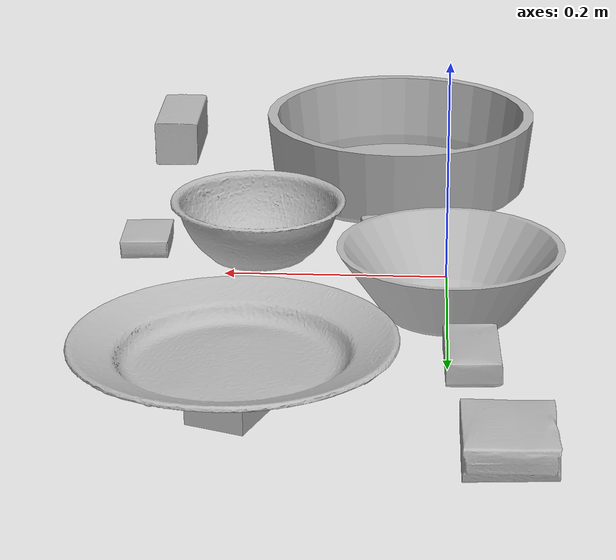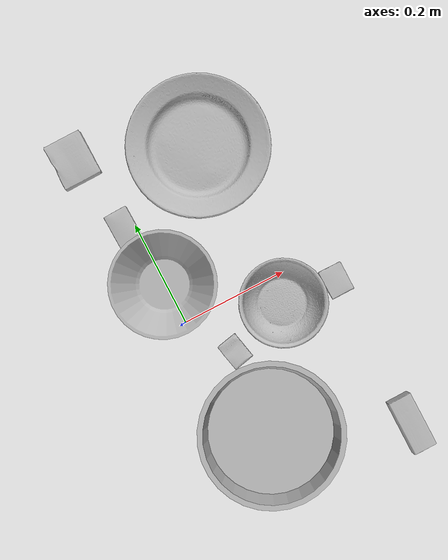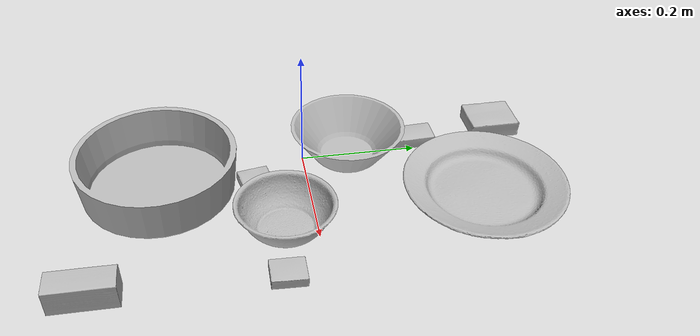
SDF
<sdf version="1.4">
  <world name="default">
    <light name="light1" type="point">
      <pose>0 0 1 0 0 0</pose>
      <diffuse>3 3 3 1</diffuse>
      <specular>3 3 3 1</specular>
    </light>
    <light name="light2" type="point">
      <pose>0 0.5 2 0 0 0</pose>
      <diffuse>1 1 1 1</diffuse>
      <specular>1 1 1 1</specular>
    </light>
    <light name="light3" type="point">
      <pose>0 0.5 2 0 0 0</pose>
      <diffuse>3 3 3 1</diffuse>
      <specular>3 3 3 1</specular>
    </light>
    <scene>
      <ambient>0.7 0.7 0.7</ambient>
    </scene>
    <model name="box1">
      <link name="link_box1">
        <collision name="default">
          <geometry>
            <mesh>
              <uri>model://jenga/collision_meshes/collision.obj</uri>
              <scale>1.0 1.0 1.0</scale>
            </mesh>
          </geometry>
          <surface>
            <friction>
              <ode>
                <mu>0.5</mu>
                <mu2>0.5</mu2>
              </ode>
            </friction>
          <contact>
        <ode>
            <max_vel>0</max_vel>
            <min_depth>0.0001</min_depth>
            <kp>1e8</kp>
        </ode>
    </contact></surface>
        </collision>
        <visual name="default">
          <geometry>
            <mesh>
              <uri>model://jenga/visual_meshes/visual.dae</uri>
              <scale>1.0 1.0 1.0</scale>
            </mesh>
          </geometry>
        </visual>
        <inertial>
          <mass>0.22956150770187378</mass>
          <pose>-2.502855807051674e-07 -0.00010250010382151231 -4.0923401684267446e-05 0.0 -7.34215461761844e-07 0.0</pose>
          <inertia>
            <ixx>6.3525236e-05</ixx>
            <iyy>0.00043044525</iyy>
            <izz>0.0004595369</izz>
            <ixy>0</ixy>
            <ixz>0</ixz>
            <iyz>0</iyz>
          </inertia>
        </inertial>
      </link>
      <pose>0.15250228345394135 0.24996280670166016 0.015000169165432453 -2.490296406355201e-06 2.6959382162000505e-07 1.2057834471282285</pose>
    </model>
    <model name="box11">
      <link name="link_box11">
        <collision name="default">
          <geometry>
            <mesh>
              <uri>model://gelatin_box/collision_meshes/collision.obj</uri>
              <scale>1.0 1.0 1.0</scale>
            </mesh>
          </geometry>
          <surface>
            <friction>
              <ode>
                <mu>0.5</mu>
                <mu2>0.5</mu2>
              </ode>
            </friction>
          <contact>
        <ode>
            <max_vel>0</max_vel>
            <min_depth>0.0001</min_depth>
            <kp>1e8</kp>
        </ode>
    </contact></surface>
        </collision>
        <visual name="default">
          <geometry>
            <mesh>
              <uri>model://gelatin_box/visual_meshes/visual.dae</uri>
              <scale>1.0 1.0 1.0</scale>
            </mesh>
          </geometry>
        </visual>
        <inertial>
          <mass>0.23979201912879944</mass>
          <pose>0.00043196187471039593 0.00011156872642459348 -0.0003640321083366871 -0.0010503717361155602 -0.00475581776093882 0.016440559470502904</pose>
          <inertia>
            <ixx>0.00016927361</ixx>
            <iyy>0.000120911245</iyy>
            <izz>0.00025767216</izz>
            <ixy>0</ixy>
            <ixz>0</ixz>
            <iyz>0</iyz>
          </inertia>
        </inertial>
      </link>
      <pose>-0.044926222413778305 0.35518091917037964 0.015168312937021255 0.005597383852855114 -0.007304479745603855 -3.1414781354931076</pose>
    </model>
    <model name="box2">
      <link name="link_box2">
        <collision name="default">
          <geometry>
            <mesh>
              <uri>model://wood_block/collision_meshes/collision.obj</uri>
              <scale>0.5 0.5 0.5</scale>
            </mesh>
          </geometry>
          <surface>
            <friction>
              <ode>
                <mu>0.5</mu>
                <mu2>0.5</mu2>
              </ode>
            </friction>
          <contact>
        <ode>
            <max_vel>0</max_vel>
            <min_depth>0.0001</min_depth>
            <kp>1e8</kp>
        </ode>
    </contact></surface>
        </collision>
        <visual name="default">
          <geometry>
            <mesh>
              <uri>model://wood_block/visual_meshes/visual.dae</uri>
              <scale>0.5 0.5 0.5</scale>
            </mesh>
          </geometry>
        </visual>
        <inertial>
          <mass>0.1620619148015976</mass>
          <pose>-2.9066577553749084e-06 -0.000285404734313488 0.00013204291462898254 -0.05221116986778199 -0.0051926948812571205 -0.006861377876233232</pose>
          <inertia>
            <ixx>5.421584e-05</ixx>
            <iyy>0.00017126785</iyy>
            <izz>0.00017062723</izz>
            <ixy>0</ixy>
            <ixz>0</ixz>
            <iyz>0</iyz>
          </inertia>
        </inertial>
      </link>
      <pose>0.2777940034866333 -0.34836849570274353 0.0226292684674263 -0.0052085577246210385 0.005718734411872381 -1.5668676207909682</pose>
    </model>
    <model name="box21">
      <link name="link_box21">
        <collision name="default">
          <geometry>
            <mesh>
              <uri>model://cracker_box/collision_meshes/collision.obj</uri>
              <scale>0.25 0.25 0.25</scale>
            </mesh>
          </geometry>
          <surface>
            <friction>
              <ode>
                <mu>0.5</mu>
                <mu2>0.5</mu2>
              </ode>
            </friction>
          <contact>
        <ode>
            <max_vel>0</max_vel>
            <min_depth>0.0001</min_depth>
            <kp>1e8</kp>
        </ode>
    </contact></surface>
        </collision>
        <visual name="default">
          <geometry>
            <mesh>
              <uri>model://cracker_box/visual_meshes/visual.dae</uri>
              <scale>0.25 0.25 0.25</scale>
            </mesh>
          </geometry>
        </visual>
        <inertial>
          <mass>0.053346797823905945</mass>
          <pose>0.0002366035187151283 6.358561950037256e-05 -0.00042573839891701937 -0.0003162075101960104 -0.011106487737771283 0.002546795233856971</pose>
          <inertia>
            <ixx>8.4806525e-06</ixx>
            <iyy>1.40032225e-05</iyy>
            <izz>1.9983887e-05</izz>
            <ixy>0</ixy>
            <ixz>0</ixz>
            <iyz>0</iyz>
          </inertia>
        </inertial>
      </link>
      <pose>0.055794306099414825 -0.0882699117064476 0.009120450355112553 -0.011787984797118923 -0.007367160364522419 -1.367188294818987</pose>
    </model>
    <model name="box3">
      <link name="link_box3">
        <collision name="default">
          <geometry>
            <mesh>
              <uri>model://pudding_box/collision_meshes/collision.obj</uri>
              <scale>0.5 0.5 0.5</scale>
            </mesh>
          </geometry>
          <surface>
            <friction>
              <ode>
                <mu>0.5</mu>
                <mu2>0.5</mu2>
              </ode>
            </friction>
          <contact>
        <ode>
            <max_vel>0</max_vel>
            <min_depth>0.0001</min_depth>
            <kp>1e8</kp>
        </ode>
    </contact></surface>
        </collision>
        <visual name="default">
          <geometry>
            <mesh>
              <uri>model://pudding_box/visual_meshes/visual.dae</uri>
              <scale>0.5 0.5 0.5</scale>
            </mesh>
          </geometry>
        </visual>
        <inertial>
          <mass>0.03981568291783333</mass>
          <pose>0.00024474109522998333 0.00040339428232982755 -0.00025944141088984907 0.005213101343760943 -0.0066037982384193495 0.020079821436446477</pose>
          <inertia>
            <ixx>1.1252395e-05</ixx>
            <iyy>7.5706907e-06</iyy>
            <izz>1.6617103e-05</izz>
            <ixy>0</ixy>
            <ixz>0</ixz>
            <iyz>0</iyz>
          </inertia>
        </inertial>
      </link>
      <pose>0.27766653895378113 -0.058469463139772415 0.009862899780273438 0.02234961803404376 -0.011390958987601644 -3.14142759250056</pose>
    </model>
    <model name="box31">
      <link name="link_box31">
        <collision name="default">
          <geometry>
            <mesh>
              <uri>model://sugar_box/collision_meshes/collision.obj</uri>
              <scale>0.5 0.5 0.5</scale>
            </mesh>
          </geometry>
          <surface>
            <friction>
              <ode>
                <mu>0.5</mu>
                <mu2>0.5</mu2>
              </ode>
            </friction>
          <contact>
        <ode>
            <max_vel>0</max_vel>
            <min_depth>0.0001</min_depth>
            <kp>1e8</kp>
        </ode>
    </contact></surface>
        </collision>
        <visual name="default">
          <geometry>
            <mesh>
              <uri>model://sugar_box/visual_meshes/visual.dae</uri>
              <scale>0.5 0.5 0.5</scale>
            </mesh>
          </geometry>
        </visual>
        <inertial>
          <mass>0.09878891706466675</mass>
          <pose>0.0005171863595023751 1.924554817378521e-05 -0.00018182402709499002 -0.0004046259508743568 0.001050663638168667 0.0026153790219137513</pose>
          <inertia>
            <ixx>2.0577656e-05</ixx>
            <iyy>6.651122e-05</iyy>
            <izz>7.9621874e-05</izz>
            <ixy>0</ixy>
            <ixz>0</ixz>
            <iyz>0</iyz>
          </inertia>
        </inertial>
      </link>
      <pose>-0.019931327551603317 0.19383782148361206 0.011399306356906891 0.0007751362571708253 -0.023432556326015628 1.5917101884688234</pose>
    </model>
    <model name="plate1">
      <link name="link_plate1">
        <collision name="default">
          <geometry>
            <mesh>
              <uri>model://pan_tefal/collision_meshes/collision.obj</uri>
              <scale>1.0 1.0 1.0</scale>
            </mesh>
          </geometry>
          <surface>
            <friction>
              <ode>
                <mu>0.5</mu>
                <mu2>0.5</mu2>
              </ode>
            </friction>
          <contact>
        <ode>
            <max_vel>0</max_vel>
            <min_depth>0.0001</min_depth>
            <kp>1e8</kp>
        </ode>
    </contact></surface>
        </collision>
        <visual name="default">
          <geometry>
            <mesh>
              <uri>model://pan_tefal/visual_meshes/visual.dae</uri>
              <scale>1.0 1.0 1.0</scale>
            </mesh>
          </geometry>
        </visual>
        <inertial>
          <mass>1.1273940801620483</mass>
          <pose>-0.00018001534044742584 3.279306838521734e-05 -0.00851493701338768 0.0008190361817388816 -0.00033014848142065665 -0.3318599615030245</pose>
          <inertia>
            <ixx>0.007782347</ixx>
            <iyy>0.00783252</iyy>
            <izz>0.014325799</izz>
            <ixy>0</ixy>
            <ixz>0</ixz>
            <iyz>0</iyz>
          </inertia>
        </inertial>
      </link>
      <pose>0.045858848839998245 -0.24661514163017273 0.03803034871816635 -0.0005456604249492947 0.00015288799563932867 2.5907078904990186</pose>
    </model>
    <model name="bowl1">
      <link name="link_bowl1">
        <collision name="default">
          <geometry>
            <mesh>
              <uri>model://bowl_a/collision_meshes/collision.obj</uri>
              <scale>1.0 1.0 1.0</scale>
            </mesh>
          </geometry>
          <surface>
            <friction>
              <ode>
                <mu>0.5</mu>
                <mu2>0.5</mu2>
              </ode>
            </friction>
          <contact>
        <ode>
            <max_vel>0</max_vel>
            <min_depth>0.0001</min_depth>
            <kp>1e8</kp>
        </ode>
    </contact></surface>
        </collision>
        <visual name="default">
          <geometry>
            <mesh>
              <uri>model://bowl_a/visual_meshes/visual.dae</uri>
              <scale>1.0 1.0 1.0</scale>
            </mesh>
          </geometry>
        </visual>
        <inertial>
          <mass>0.3873887062072754</mass>
          <pose>0.00027867493918165565 4.731054286821745e-05 -0.0013765293406322598 -0.0009805472575270138 -0.0010938146264646796 -0.19122952428204854</pose>
          <inertia>
            <ixx>0.0011029133</ixx>
            <iyy>0.0011096848</iyy>
            <izz>0.001961574</izz>
            <ixy>0</ixy>
            <ixz>0</ixz>
            <iyz>0</iyz>
          </inertia>
        </inertial>
      </link>
      <pose>-0.0023287152871489525 0.07932373136281967 0.030382994562387466 1.232222006934591e-08 -1.5541838088985406e-08 -0.0861501018695802</pose>
    </model>
    <model name="plate2">
      <link name="link_plate2">
        <collision name="default">
          <geometry>
            <mesh>
              <uri>model://plate/collision_meshes/collision.obj</uri>
              <scale>1.0 1.0 1.0</scale>
            </mesh>
          </geometry>
          <surface>
            <friction>
              <ode>
                <mu>0.5</mu>
                <mu2>0.5</mu2>
              </ode>
            </friction>
          <contact>
        <ode>
            <max_vel>0</max_vel>
            <min_depth>0.0001</min_depth>
            <kp>1e8</kp>
        </ode>
    </contact></surface>
        </collision>
        <visual name="default">
          <geometry>
            <mesh>
              <uri>model://plate/visual_meshes/visual.dae</uri>
              <scale>1.0 1.0 1.0</scale>
            </mesh>
          </geometry>
        </visual>
        <inertial>
          <mass>0.13866961002349854</mass>
          <pose>-0.0006044620531611145 0.0002782586379908025 -0.0010561972158029675 0.0022187857877866432 -0.0032254843385796767 0.452609315183835</pose>
          <inertia>
            <ixx>0.0006486992</ixx>
            <iyy>0.0006424946</iyy>
            <izz>0.0012687586</izz>
            <ixy>0</ixy>
            <ixz>0</ixz>
            <iyz>0</iyz>
          </inertia>
        </inertial>
      </link>
      <pose>0.167874276638031 0.26963725686073303 0.0432874858379364 -0.01277012316842556 0.009604262854452083 -1.3085092555225009</pose>
    </model>
    <model name="bowl2">
      <link name="link_bowl2">
        <collision name="default">
          <geometry>
            <mesh>
              <uri>model://bowl/collision_meshes/collision.obj</uri>
              <scale>1.0 1.0 1.0</scale>
            </mesh>
          </geometry>
          <surface>
            <friction>
              <ode>
                <mu>0.5</mu>
                <mu2>0.5</mu2>
              </ode>
            </friction>
          <contact>
        <ode>
            <max_vel>0</max_vel>
            <min_depth>0.0001</min_depth>
            <kp>1e8</kp>
        </ode>
    </contact></surface>
        </collision>
        <visual name="default">
          <geometry>
            <mesh>
              <uri>model://bowl/visual_meshes/visual.dae</uri>
              <scale>1.0 1.0 1.0</scale>
            </mesh>
          </geometry>
        </visual>
        <inertial>
          <mass>0.04854629561305046</mass>
          <pose>0.00020445325935725123 -0.0010302069131284952 -0.0008042645058594644 -0.015764106240563104 0.014546770392749554 0.7140394241749954</pose>
          <inertia>
            <ixx>0.00011151466</ixx>
            <iyy>0.00010902299</iyy>
            <izz>0.00018760598</izz>
            <ixy>0</ixy>
            <ixz>0</ixz>
            <iyz>0</iyz>
          </inertia>
        </inertial>
      </link>
      <pose>0.17309892177581787 -0.04966960474848747 0.027780000120401382 -2.2037251748430473e-07 -9.957191303467401e-08 1.158491132783112</pose>
    </model>
  <physics type="ode">
      <max_contacts>50</max_contacts>
      <ode>
        <solver>
          <type>quick</type>
          <iters>75</iters>
        </solver>
        <constraints>
          <contact_max_correcting_vel>0</contact_max_correcting_vel>
          <contact_surface_layer>0</contact_surface_layer>
        </constraints>
      </ode>
    </physics></world>
</sdf>
